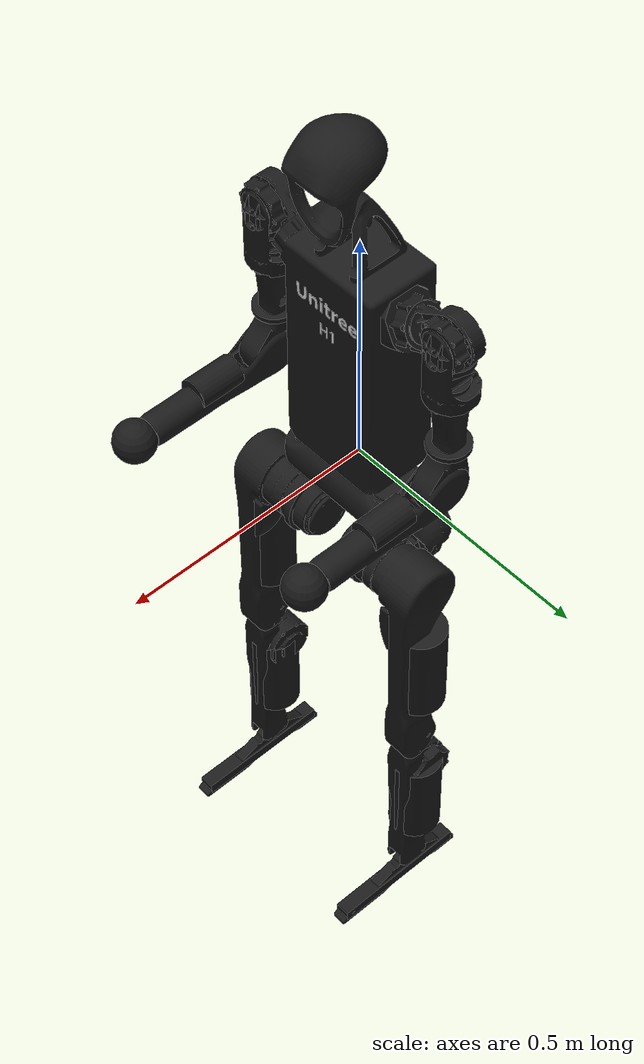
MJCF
<?xml version='1.0' encoding='utf-8'?>
<mujoco model="h1">
  <compiler angle="radian" meshdir=".." boundmass="1e-06" boundinertia="1e-08" />
  <asset>
    <mesh name="mesh_0" content_type="model/obj" file="meshes_mjlab/pelvis.obj" />
    <mesh name="mesh_1" content_type="model/obj" file="meshes_mjlab/left_hip_yaw_link.obj" />
    <mesh name="mesh_2" content_type="model/obj" file="meshes_mjlab/left_hip_roll_link.obj" />
    <mesh name="mesh_3" content_type="model/obj" file="meshes_mjlab/left_hip_pitch_link.obj" />
    <mesh name="mesh_4" content_type="model/obj" file="meshes_mjlab/left_knee_link.obj" />
    <mesh name="mesh_5" content_type="model/obj" file="meshes_mjlab/left_ankle_link.obj" />
    <mesh name="mesh_6" content_type="model/obj" file="meshes_mjlab/right_hip_yaw_link.obj" />
    <mesh name="mesh_7" content_type="model/obj" file="meshes_mjlab/right_hip_roll_link.obj" />
    <mesh name="mesh_8" content_type="model/obj" file="meshes_mjlab/right_hip_pitch_link.obj" />
    <mesh name="mesh_9" content_type="model/obj" file="meshes_mjlab/right_knee_link.obj" />
    <mesh name="mesh_10" content_type="model/obj" file="meshes_mjlab/right_ankle_link.obj" />
    <mesh name="mesh_11" content_type="model/obj" file="meshes_mjlab/torso_link.obj" />
    <mesh name="mesh_12" content_type="model/obj" file="meshes_mjlab/left_shoulder_pitch_link.obj" />
    <mesh name="mesh_13" content_type="model/obj" file="meshes_mjlab/left_shoulder_roll_link.obj" />
    <mesh name="mesh_14" content_type="model/obj" file="meshes_mjlab/left_shoulder_yaw_link.obj" />
    <mesh name="mesh_15" content_type="model/obj" file="meshes_mjlab/left_elbow_link.obj" />
    <mesh name="mesh_16" content_type="model/obj" file="meshes_mjlab/right_shoulder_pitch_link.obj" />
    <mesh name="mesh_17" content_type="model/obj" file="meshes_mjlab/right_shoulder_roll_link.obj" />
    <mesh name="mesh_18" content_type="model/obj" file="meshes_mjlab/right_shoulder_yaw_link.obj" />
    <mesh name="mesh_19" content_type="model/obj" file="meshes_mjlab/right_elbow_link.obj" />
    <mesh name="mesh_20" content_type="model/obj" file="meshes_mjlab/logo_link.obj" />
  </asset>
  <worldbody>
    <body name="pelvis">
      <inertial pos="-0.0002 4e-05 -0.04522" quat="0.498303 0.499454 -0.500496 0.501741" mass="5.39" diaginertia="0.0490211 0.0445821 0.00824619" />
      <joint type="free" />
      <geom type="mesh" contype="0" conaffinity="0" group="1" density="0" rgba="0.1 0.1 0.1 1" mesh="mesh_0" />
      <geom size="0.05" rgba="0.1 0.1 0.1 1" />
      <body name="left_hip_yaw_link" pos="0 0.0875 -0.1742">
        <inertial pos="-0.04923 0.0001 0.0072" quat="0.69699 0.219193 0.233287 0.641667" mass="2.244" diaginertia="0.00304494 0.00296885 0.00189201" />
        <joint name="left_hip_yaw_joint" pos="0 0 0" axis="0 0 1" range="-0.43 0.43" actuatorfrcrange="-200 200" />
        <geom type="mesh" contype="0" conaffinity="0" group="1" density="0" rgba="0.1 0.1 0.1 1" mesh="mesh_1" />
        <geom size="0.01 0.01" pos="0.02 0 0" quat="0.707107 0 0.707107 0" type="cylinder" rgba="0.1 0.1 0.1 1" />
        <body name="left_hip_roll_link" pos="0.039468 0 0">
          <inertial pos="-0.0058 -0.00319 -9e-05" quat="0.0438242 0.70721 -0.0729075 0.701867" mass="2.232" diaginertia="0.00243264 0.00225325 0.00205492" />
          <joint name="left_hip_roll_joint" pos="0 0 0" axis="1 0 0" range="-0.43 0.43" actuatorfrcrange="-200 200" />
          <geom type="mesh" contype="0" conaffinity="0" group="1" density="0" rgba="0.1 0.1 0.1 1" mesh="mesh_2" />
          <geom size="0.02 0.005" pos="0 0.06 0" quat="0.707107 0.707107 0 0" type="cylinder" rgba="0.1 0.1 0.1 1" />
          <body name="left_hip_pitch_link" pos="0 0.11536 0">
            <inertial pos="0.00746 -0.02346 -0.08193" quat="0.979828 0.0513522 -0.0169854 -0.192382" mass="4.152" diaginertia="0.0829503 0.0821457 0.00510909" />
            <joint name="left_hip_pitch_joint" pos="0 0 0" axis="0 1 0" range="-3.14 2.53" actuatorfrcrange="-200 200" />
            <geom type="mesh" contype="0" conaffinity="0" group="1" density="0" rgba="0.1 0.1 0.1 1" mesh="mesh_3" />
            <geom size="0.05 0.1" pos="0 0 -0.2" type="cylinder" rgba="0.1 0.1 0.1 1" />
            <body name="left_knee_link" pos="0 0 -0.4">
              <inertial pos="-0.00136 -0.00512 -0.1384" quat="0.626132 -0.034227 -0.0416277 0.777852" mass="1.721" diaginertia="0.0125237 0.0123104 0.0019428" />
              <joint name="left_knee_joint" pos="0 0 0" axis="0 1 0" range="-0.26 2.05" actuatorfrcrange="-300 300" />
              <geom type="mesh" contype="0" conaffinity="0" group="1" density="0" rgba="0.1 0.1 0.1 1" mesh="mesh_4" />
              <geom size="0.05 0.1" pos="0 0 -0.2" type="cylinder" rgba="0.1 0.1 0.1 1" />
              <body name="left_ankle_link" pos="0 0 -0.4">
                <inertial pos="0.042575 -1e-06 -0.044672" quat="0.486508 0.513141 0.513061 0.486585" mass="0.474" diaginertia="0.00290029 0.00281294 0.000152168" />
                <joint name="left_ankle_joint" pos="0 0 0" axis="0 1 0" range="-0.87 0.52" actuatorfrcrange="-40 40" />
                <geom type="mesh" contype="0" conaffinity="0" group="1" density="0" rgba="0.1 0.1 0.1 1" mesh="mesh_5" />
                <geom size="0.14 0.015 0.012" pos="0.05 0 -0.05" type="box" rgba="0.1 0.1 0.1 1" />
              </body>
            </body>
          </body>
        </body>
      </body>
      <body name="right_hip_yaw_link" pos="0 -0.0875 -0.1742">
        <inertial pos="-0.04923 -0.0001 0.0072" quat="0.641667 0.233287 0.219193 0.69699" mass="2.244" diaginertia="0.00304494 0.00296885 0.00189201" />
        <joint name="right_hip_yaw_joint" pos="0 0 0" axis="0 0 1" range="-0.43 0.43" actuatorfrcrange="-200 200" />
        <geom type="mesh" contype="0" conaffinity="0" group="1" density="0" rgba="0.1 0.1 0.1 1" mesh="mesh_6" />
        <geom size="0.01 0.01" pos="0.02 0 0" quat="0.707107 0 0.707107 0" type="cylinder" rgba="0.1 0.1 0.1 1" />
        <body name="right_hip_roll_link" pos="0.039468 0 0">
          <inertial pos="-0.0058 0.00319 -9e-05" quat="-0.0438242 0.70721 0.0729075 0.701867" mass="2.232" diaginertia="0.00243264 0.00225325 0.00205492" />
          <joint name="right_hip_roll_joint" pos="0 0 0" axis="1 0 0" range="-0.43 0.43" actuatorfrcrange="-200 200" />
          <geom type="mesh" contype="0" conaffinity="0" group="1" density="0" rgba="0.1 0.1 0.1 1" mesh="mesh_7" />
          <geom size="0.02 0.005" pos="0 -0.06 0" quat="0.707107 0.707107 0 0" type="cylinder" rgba="0.1 0.1 0.1 1" />
          <body name="right_hip_pitch_link" pos="0 -0.11536 0">
            <inertial pos="0.00746 0.02346 -0.08193" quat="0.979828 -0.0513522 -0.0169854 0.192382" mass="4.152" diaginertia="0.0829503 0.0821457 0.00510909" />
            <joint name="right_hip_pitch_joint" pos="0 0 0" axis="0 1 0" range="-3.14 2.53" actuatorfrcrange="-200 200" />
            <geom type="mesh" contype="0" conaffinity="0" group="1" density="0" rgba="0.1 0.1 0.1 1" mesh="mesh_8" />
            <geom size="0.05 0.1" pos="0 0 -0.2" type="cylinder" rgba="0.1 0.1 0.1 1" />
            <body name="right_knee_link" pos="0 0 -0.4">
              <inertial pos="-0.00136 0.00512 -0.1384" quat="0.777852 -0.0416277 -0.034227 0.626132" mass="1.721" diaginertia="0.0125237 0.0123104 0.0019428" />
              <joint name="right_knee_joint" pos="0 0 0" axis="0 1 0" range="-0.26 2.05" actuatorfrcrange="-300 300" />
              <geom type="mesh" contype="0" conaffinity="0" group="1" density="0" rgba="0.1 0.1 0.1 1" mesh="mesh_9" />
              <geom size="0.05 0.1" pos="0 0 -0.2" type="cylinder" rgba="0.1 0.1 0.1 1" />
              <body name="right_ankle_link" pos="0 0 -0.4">
                <inertial pos="0.042575 1e-06 -0.044672" quat="0.486585 0.513061 0.513141 0.486508" mass="0.474" diaginertia="0.00290029 0.00281294 0.000152168" />
                <joint name="right_ankle_joint" pos="0 0 0" axis="0 1 0" range="-0.87 0.52" actuatorfrcrange="-40 40" />
                <geom type="mesh" contype="0" conaffinity="0" group="1" density="0" rgba="0.1 0.1 0.1 1" mesh="mesh_10" />
                <geom size="0.14 0.015 0.012" pos="0.05 0 -0.05" type="box" rgba="0.1 0.1 0.1 1" />
              </body>
            </body>
          </body>
        </body>
      </body>
      <body name="torso_link">
        <inertial pos="0.000489057 0.00279701 0.20484" quat="0.999989 -0.00130811 -0.00282216 -0.0034912" mass="17.789" diaginertia="0.487318 0.409631 0.127837" />
        <joint name="torso_joint" pos="0 0 0" axis="0 0 1" range="-2.35 2.35" actuatorfrcrange="-200 200" />
        <geom type="mesh" contype="0" conaffinity="0" group="1" density="0" rgba="0.1 0.1 0.1 1" mesh="mesh_11" />
        <geom size="0.04 0.08 0.05" pos="0 0 0.15" type="box" rgba="0.1 0.1 0.1 1" />
        <geom type="mesh" contype="0" conaffinity="0" group="1" density="0" rgba="1 1 1 1" mesh="mesh_20" />
        <geom size="0.001" pos="0.108485 0.0175 0.693171" quat="0.237224 -0.666125 0.666128 -0.237225" contype="0" conaffinity="0" group="1" density="0" rgba="1 1 1 1" />
        <geom size="0.001" pos="0.108485 0.0175 0.693171" quat="0.237224 -0.666125 0.666128 -0.237225" rgba="1 1 1 1" />
        <geom size="0.001" pos="0.108485 0.0325 0.693171" quat="0.237224 -0.666125 0.666128 -0.237225" contype="0" conaffinity="0" group="1" density="0" rgba="1 1 1 1" />
        <geom size="0.001" pos="0.108485 0.0325 0.693171" quat="0.237224 -0.666125 0.666128 -0.237225" rgba="1 1 1 1" />
        <geom size="0.001" pos="0.0472999 0 0.674929" quat="0.99262 0 0.121263 0" contype="0" conaffinity="0" group="1" density="0" rgba="1 1 1 1" />
        <geom size="0.001" pos="0.0472999 0 0.674929" quat="0.99262 0 0.121263 0" rgba="1 1 1 1" />
        <body name="left_shoulder_pitch_link" pos="0.0055 0.15535 0.42999" quat="0.976296 0.216438 0 0">
          <inertial pos="0.005045 0.053657 -0.015715" quat="0.814858 0.579236 -0.0201072 -0.00936488" mass="1.033" diaginertia="0.00129936 0.000987113 0.000858198" />
          <joint name="left_shoulder_pitch_joint" pos="0 0 0" axis="0 1 0" range="-2.87 2.87" actuatorfrcrange="-200 200" />
          <geom type="mesh" contype="0" conaffinity="0" group="1" density="0" rgba="0.1 0.1 0.1 1" mesh="mesh_12" />
          <geom size="0.03 0.02" pos="0 -0.05 0" quat="0.707107 0.707107 0 0" type="cylinder" rgba="0.1 0.1 0.1 1" />
          <body name="left_shoulder_roll_link" pos="-0.0055 0.0565 -0.0165" quat="0.976296 -0.216438 0 0">
            <inertial pos="0.000679 0.00115 -0.094076" quat="0.732491 0.00917179 0.0766656 0.676384" mass="0.793" diaginertia="0.00170388 0.00158256 0.00100336" />
            <joint name="left_shoulder_roll_joint" pos="0 0 0" axis="1 0 0" range="-0.34 3.11" actuatorfrcrange="-200 200" />
            <geom type="mesh" contype="0" conaffinity="0" group="1" density="0" rgba="0.1 0.1 0.1 1" mesh="mesh_13" />
            <geom size="0.04 0.005" pos="0 0 -0.04" type="cylinder" rgba="0.1 0.1 0.1 1" />
            <body name="left_shoulder_yaw_link" pos="0 0 -0.1343">
              <inertial pos="0.01365 0.002767 -0.16266" quat="0.703042 -0.0331229 -0.0473362 0.708798" mass="0.839" diaginertia="0.00408038 0.00370367 0.000622687" />
              <joint name="left_shoulder_yaw_joint" pos="0 0 0" axis="0 0 1" range="-1.3 4.45" actuatorfrcrange="-200 200" />
              <geom type="mesh" contype="0" conaffinity="0" group="1" density="0" rgba="0.1 0.1 0.1 1" mesh="mesh_14" />
              <geom size="0.04 0.005" pos="0 0 -0.11" type="cylinder" rgba="0.1 0.1 0.1 1" />
              <body name="left_elbow_link" pos="0.0185 0 -0.198">
                <inertial pos="0.201416 8.60816e-05 -0.0162117" quat="0.12068 0.708652 0.127798 0.683312" mass="0.991083" diaginertia="0.00975923 0.00974876 0.000583358" />
                <joint name="left_elbow_joint" pos="0 0 0" axis="0 1 0" range="-1.25 2.61" actuatorfrcrange="-200 200" />
                <geom type="mesh" contype="0" conaffinity="0" group="1" density="0" rgba="0.1 0.1 0.1 1" mesh="mesh_15" />
                <geom size="0.03 0.045" pos="0.125 0 0" quat="0.707388 0 0.706825 0" type="cylinder" rgba="0.1 0.1 0.1 1" />
                <geom size="0.04" pos="0.3 0 -0.0175" contype="0" conaffinity="0" group="1" density="0" rgba="0.1 0.1 0.1 1" />
                <geom size="0.04" pos="0.3 0 -0.0175" rgba="0.1 0.1 0.1 1" />
              </body>
            </body>
          </body>
        </body>
        <body name="right_shoulder_pitch_link" pos="0.0055 -0.15535 0.42999" quat="0.976296 -0.216438 0 0">
          <inertial pos="0.005045 -0.053657 -0.015715" quat="0.579236 0.814858 0.00936488 0.0201072" mass="1.033" diaginertia="0.00129936 0.000987113 0.000858198" />
          <joint name="right_shoulder_pitch_joint" pos="0 0 0" axis="0 1 0" range="-2.87 2.87" actuatorfrcrange="-200 200" />
          <geom type="mesh" contype="0" conaffinity="0" group="1" density="0" rgba="0.1 0.1 0.1 1" mesh="mesh_16" />
          <geom size="0.03 0.02" pos="0 0.05 0" quat="0.707107 -0.707107 0 0" type="cylinder" rgba="0.1 0.1 0.1 1" />
          <body name="right_shoulder_roll_link" pos="-0.0055 -0.0565 -0.0165" quat="0.976296 0.216438 0 0">
            <inertial pos="0.000679 -0.00115 -0.094076" quat="0.676384 0.0766656 0.00917179 0.732491" mass="0.793" diaginertia="0.00170388 0.00158256 0.00100336" />
            <joint name="right_shoulder_roll_joint" pos="0 0 0" axis="1 0 0" range="-3.11 0.34" actuatorfrcrange="-200 200" />
            <geom type="mesh" contype="0" conaffinity="0" group="1" density="0" rgba="0.1 0.1 0.1 1" mesh="mesh_17" />
            <geom size="0.04 0.005" pos="0 0 -0.04" type="cylinder" rgba="0.1 0.1 0.1 1" />
            <body name="right_shoulder_yaw_link" pos="0 0 -0.1343">
              <inertial pos="0.01365 -0.002767 -0.16266" quat="0.708798 -0.0473362 -0.0331229 0.703042" mass="0.839" diaginertia="0.00408038 0.00370367 0.000622687" />
              <joint name="right_shoulder_yaw_joint" pos="0 0 0" axis="0 0 1" range="-4.45 1.3" actuatorfrcrange="-200 200" />
              <geom type="mesh" contype="0" conaffinity="0" group="1" density="0" rgba="0.1 0.1 0.1 1" mesh="mesh_18" />
              <geom size="0.04 0.005" pos="0 0 -0.11" type="cylinder" rgba="0.1 0.1 0.1 1" />
              <body name="right_elbow_link" pos="0.0185 0 -0.198">
                <inertial pos="0.201416 -8.60816e-05 -0.0162117" quat="-0.12068 0.708652 -0.127798 0.683312" mass="0.991083" diaginertia="0.00975923 0.00974876 0.000583358" />
                <joint name="right_elbow_joint" pos="0 0 0" axis="0 1 0" range="-1.25 2.61" actuatorfrcrange="-200 200" />
                <geom type="mesh" contype="0" conaffinity="0" group="1" density="0" rgba="0.1 0.1 0.1 1" mesh="mesh_19" />
                <geom size="0.03 0.045" pos="0.125 0 0" quat="0.707388 0 0.706825 0" type="cylinder" rgba="0.1 0.1 0.1 1" />
                <geom size="0.04" pos="0.3 0 -0.0175" contype="0" conaffinity="0" group="1" density="0" rgba="0.1 0.1 0.1 1" />
                <geom size="0.04" pos="0.3 0 -0.0175" rgba="0.1 0.1 0.1 1" />
              </body>
            </body>
          </body>
        </body>
      </body>
    </body>
  </worldbody>
</mujoco>
